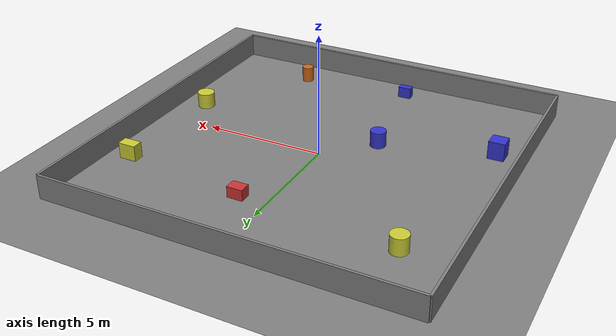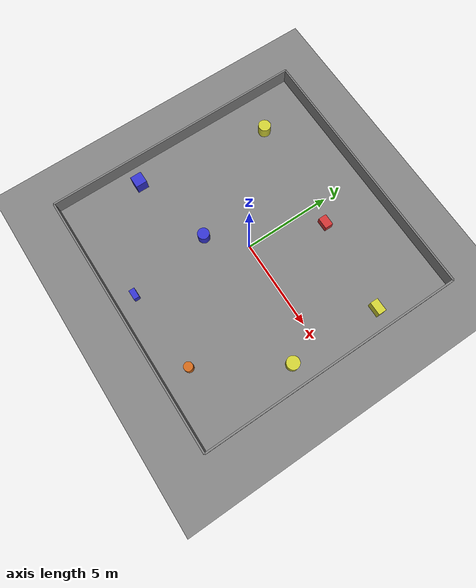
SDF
<?xml version="1.0" ?>
<sdf version="1.8">
  <world name="simple_room_generated">

    <!-- Physics -->
    <physics name="1ms" type="ignored">
      <max_step_size>0.001</max_step_size>
      <real_time_factor>1.0</real_time_factor>
    </physics>

    <!-- Plugins -->
    <plugin filename="gz-sim-physics-system" name="gz::sim::systems::Physics"/>
    <plugin filename="gz-sim-user-commands-system" name="gz::sim::systems::UserCommands"/>
    <plugin filename="gz-sim-scene-broadcaster-system" name="gz::sim::systems::SceneBroadcaster"/>
    <plugin filename="gz-sim-sensors-system" name="gz::sim::systems::Sensors">
      <render_engine>ogre2</render_engine>
    </plugin>
    <plugin filename="gz-sim-imu-system" name="gz::sim::systems::Imu"/>
    <plugin filename="gz-sim-contact-system" name="gz::sim::systems::Contact"/>

    <!-- Lighting -->
    <light type="directional" name="sun">
      <cast_shadows>true</cast_shadows>
      <pose>0 0 10 0 0 0</pose>
      <diffuse>0.8 0.8 0.8 1</diffuse>
      <specular>0.2 0.2 0.2 1</specular>
      <direction>-0.5 0.1 -0.9</direction>
    </light>

    <!-- Ground Plane -->
    <model name="ground_plane">
      <static>true</static>
      <link name="link">
        <collision name="collision">
          <geometry>
            <plane>
              <normal>0 0 1</normal>
              <size>100 100</size>
            </plane>
          </geometry>
        </collision>
        <visual name="visual">
          <geometry>
            <plane>
              <normal>0 0 1</normal>
              <size>100 100</size>
            </plane>
          </geometry>
          <material>
            <ambient>0.5 0.5 0.5 1.0</ambient>
            <diffuse>0.5 0.5 0.5 1.0</diffuse>
          </material>
        </visual>
      </link>
    </model>

    <model name="wall_north">
      <static>true</static>
      <pose>0 7.5 0.5 0.0 0.0 0.0</pose>
      <link name="link">
        <collision name="collision">
          <geometry><box><size>15.0 0.1 1.0</size></box></geometry>
        </collision>
        <visual name="visual">
          <geometry><box><size>15.0 0.1 1.0</size></box></geometry>
          <material>
            <ambient>0.5 0.5 0.5 1.0</ambient>
            <diffuse>0.5 0.5 0.5 1.0</diffuse>
          </material>
        </visual>
      </link>
    </model>

    <model name="wall_south">
      <static>true</static>
      <pose>0 -7.5 0.5 0.0 0.0 0.0</pose>
      <link name="link">
        <collision name="collision">
          <geometry><box><size>15.0 0.1 1.0</size></box></geometry>
        </collision>
        <visual name="visual">
          <geometry><box><size>15.0 0.1 1.0</size></box></geometry>
          <material>
            <ambient>0.5 0.5 0.5 1.0</ambient>
            <diffuse>0.5 0.5 0.5 1.0</diffuse>
          </material>
        </visual>
      </link>
    </model>

    <model name="wall_east">
      <static>true</static>
      <pose>7.5 0 0.5 0.0 0.0 0.0</pose>
      <link name="link">
        <collision name="collision">
          <geometry><box><size>0.1 15.0 1.0</size></box></geometry>
        </collision>
        <visual name="visual">
          <geometry><box><size>0.1 15.0 1.0</size></box></geometry>
          <material>
            <ambient>0.5 0.5 0.5 1.0</ambient>
            <diffuse>0.5 0.5 0.5 1.0</diffuse>
          </material>
        </visual>
      </link>
    </model>

    <model name="wall_west">
      <static>true</static>
      <pose>-7.5 0 0.5 0.0 0.0 0.0</pose>
      <link name="link">
        <collision name="collision">
          <geometry><box><size>0.1 15.0 1.0</size></box></geometry>
        </collision>
        <visual name="visual">
          <geometry><box><size>0.1 15.0 1.0</size></box></geometry>
          <material>
            <ambient>0.5 0.5 0.5 1.0</ambient>
            <diffuse>0.5 0.5 0.5 1.0</diffuse>
          </material>
        </visual>
      </link>
    </model>

    <model name="box_1">
      <static>true</static>
      <pose>-6.355492227404514 -3.0101721969920052 0.3784359135409691 0.0 0.0 0.0</pose>
      <link name="link">
        <collision name="collision">
          <geometry><box><size>0.6682356070820061 0.6383497437114556 0.7568718270819382</size></box></geometry>
        </collision>
        <visual name="visual">
          <geometry><box><size>0.6682356070820061 0.6383497437114556 0.7568718270819382</size></box></geometry>
          <material>
            <ambient>0.2 0.2 0.8 1.0</ambient>
            <diffuse>0.2 0.2 0.8 1.0</diffuse>
          </material>
        </visual>
      </link>
    </model>

    <model name="box_2">
      <static>true</static>
      <pose>-1.066277057386599 -6.421338653277856 0.2397675301373297 0.0 0.0 0.0</pose>
      <link name="link">
        <collision name="collision">
          <geometry><box><size>0.5526776440516812 0.3132679848419318 0.4795350602746594</size></box></geometry>
        </collision>
        <visual name="visual">
          <geometry><box><size>0.5526776440516812 0.3132679848419318 0.4795350602746594</size></box></geometry>
          <material>
            <ambient>0.2 0.2 0.8 1.0</ambient>
            <diffuse>0.2 0.2 0.8 1.0</diffuse>
          </material>
        </visual>
      </link>
    </model>

    <model name="box_3">
      <static>true</static>
      <pose>1.1939336797105993 4.138650237301259 0.23109589996235633 0.0 0.0 0.0</pose>
      <link name="link">
        <collision name="collision">
          <geometry><box><size>0.6490696974941135 0.4701252582589959 0.46219179992471265</size></box></geometry>
        </collision>
        <visual name="visual">
          <geometry><box><size>0.6490696974941135 0.4701252582589959 0.46219179992471265</size></box></geometry>
          <material>
            <ambient>0.8 0.2 0.2 1.0</ambient>
            <diffuse>0.8 0.2 0.2 1.0</diffuse>
          </material>
        </visual>
      </link>
    </model>

    <model name="cylinder_4">
      <static>true</static>
      <pose>-5.331971459430582 4.594359743967199 0.34594635733876355 0.0 0.0 0.0</pose>
      <link name="link">
        <collision name="collision">
          <geometry>
            <cylinder>
              <radius>0.35178206831859504</radius>
              <length>0.6918927146775271</length>
            </cylinder>
          </geometry>
        </collision>
        <visual name="visual">
          <geometry>
            <cylinder>
              <radius>0.35178206831859504</radius>
              <length>0.6918927146775271</length>
            </cylinder>
          </geometry>
          <material>
            <ambient>0.8 0.8 0.2 1.0</ambient>
            <diffuse>0.8 0.8 0.2 1.0</diffuse>
          </material>
        </visual>
      </link>
    </model>

    <model name="cylinder_5">
      <static>true</static>
      <pose>6.354836984939483 -1.6315123927020965 0.3237039504728492 0.0 0.0 0.0</pose>
      <link name="link">
        <collision name="collision">
          <geometry>
            <cylinder>
              <radius>0.3573511660632487</radius>
              <length>0.6474079009456984</length>
            </cylinder>
          </geometry>
        </collision>
        <visual name="visual">
          <geometry>
            <cylinder>
              <radius>0.3573511660632487</radius>
              <length>0.6474079009456984</length>
            </cylinder>
          </geometry>
          <material>
            <ambient>0.8 0.8 0.2 1.0</ambient>
            <diffuse>0.8 0.8 0.2 1.0</diffuse>
          </material>
        </visual>
      </link>
    </model>

    <model name="cylinder_6">
      <static>true</static>
      <pose>-1.7935616260691205 -1.7225877722851806 0.3367095331073334 0.0 0.0 0.0</pose>
      <link name="link">
        <collision name="collision">
          <geometry>
            <cylinder>
              <radius>0.32545507836463783</radius>
              <length>0.6734190662146669</length>
            </cylinder>
          </geometry>
        </collision>
        <visual name="visual">
          <geometry>
            <cylinder>
              <radius>0.32545507836463783</radius>
              <length>0.6734190662146669</length>
            </cylinder>
          </geometry>
          <material>
            <ambient>0.2 0.2 0.8 1.0</ambient>
            <diffuse>0.2 0.2 0.8 1.0</diffuse>
          </material>
        </visual>
      </link>
    </model>

    <model name="box_7">
      <static>true</static>
      <pose>6.448019957270777 3.5795297477997696 0.32778989897320104 0.0 0.0 0.0</pose>
      <link name="link">
        <collision name="collision">
          <geometry><box><size>0.7352592849183834 0.44922239572431644 0.6555797979464021</size></box></geometry>
        </collision>
        <visual name="visual">
          <geometry><box><size>0.7352592849183834 0.44922239572431644 0.6555797979464021</size></box></geometry>
          <material>
            <ambient>0.8 0.8 0.2 1.0</ambient>
            <diffuse>0.8 0.8 0.2 1.0</diffuse>
          </material>
        </visual>
      </link>
    </model>

    <model name="cylinder_8">
      <static>true</static>
      <pose>3.642434663986908 -6.0325466376099675 0.33273776589690696 0.0 0.0 0.0</pose>
      <link name="link">
        <collision name="collision">
          <geometry>
            <cylinder>
              <radius>0.24651968812274558</radius>
              <length>0.6654755317938139</length>
            </cylinder>
          </geometry>
        </collision>
        <visual name="visual">
          <geometry>
            <cylinder>
              <radius>0.24651968812274558</radius>
              <length>0.6654755317938139</length>
            </cylinder>
          </geometry>
          <material>
            <ambient>0.8 0.4 0.1 1.0</ambient>
            <diffuse>0.8 0.4 0.1 1.0</diffuse>
          </material>
        </visual>
      </link>
    </model>

  </world>
</sdf>
